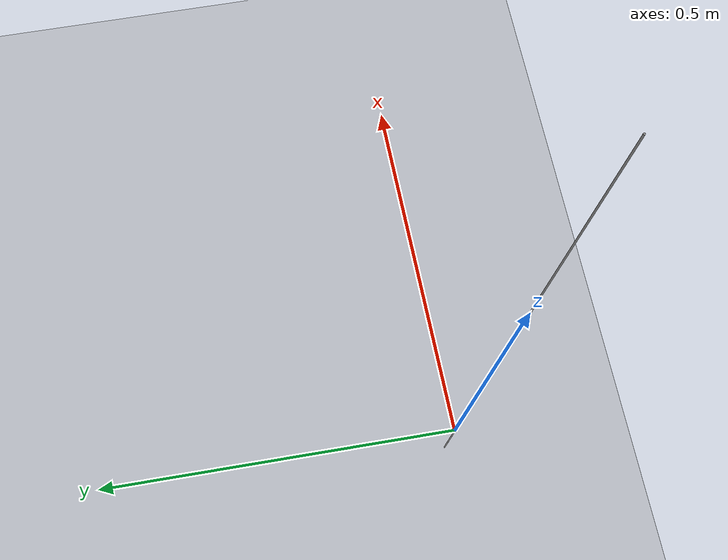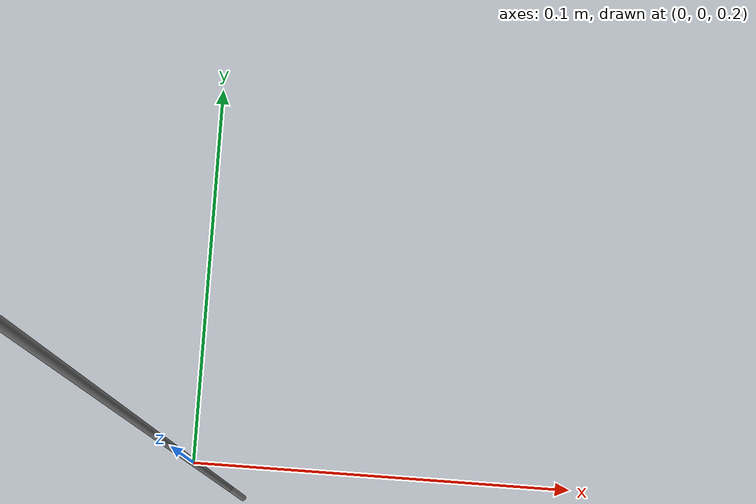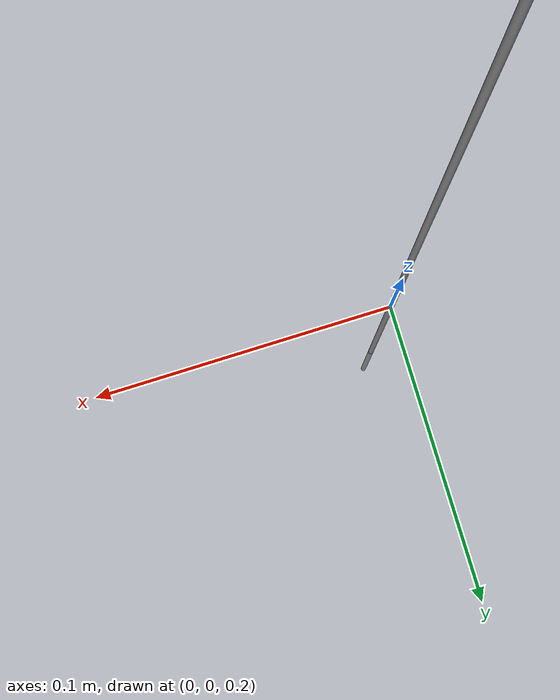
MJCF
<mujoco model="cyl_tiny_radius">
            <option gravity="0 0 0" timestep="0.001"/>
            <worldbody>
                <geom name="floor" type="plane" size="10 10 0.1"/>
                <body name="cyl" pos="0 0 0.4">
                    <joint type="free"/>
                    <geom type="cylinder" size="0.001 0.5"/>
                </body>
            </worldbody>
        </mujoco>
